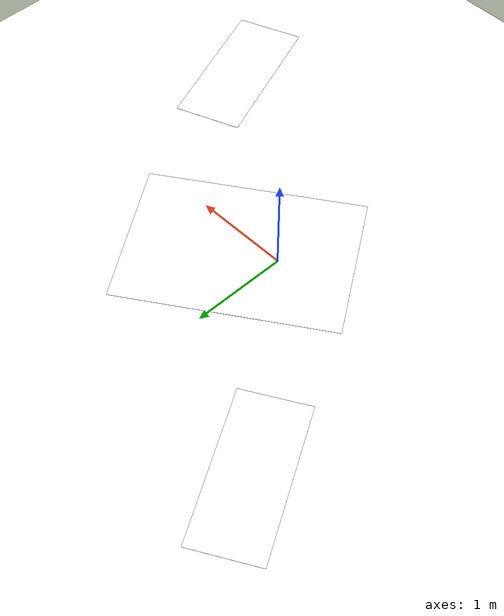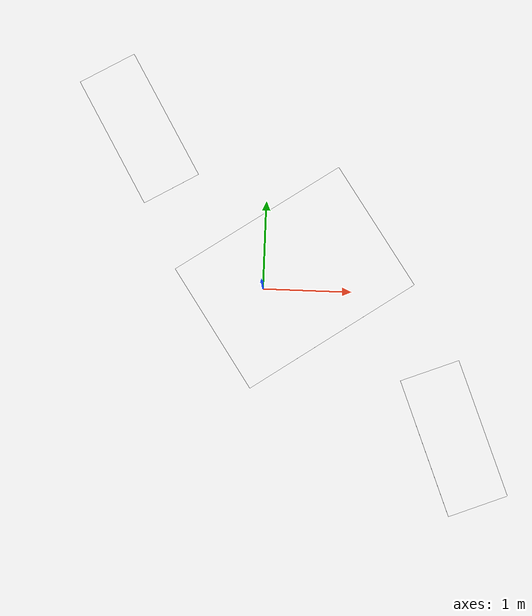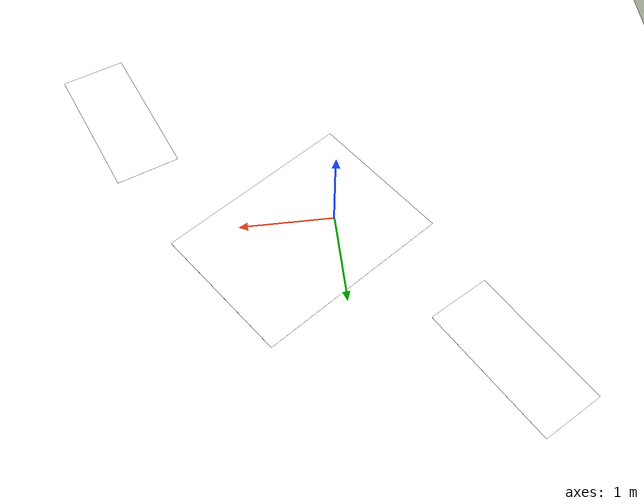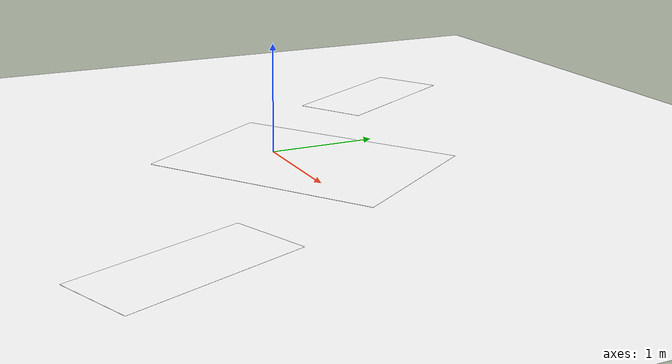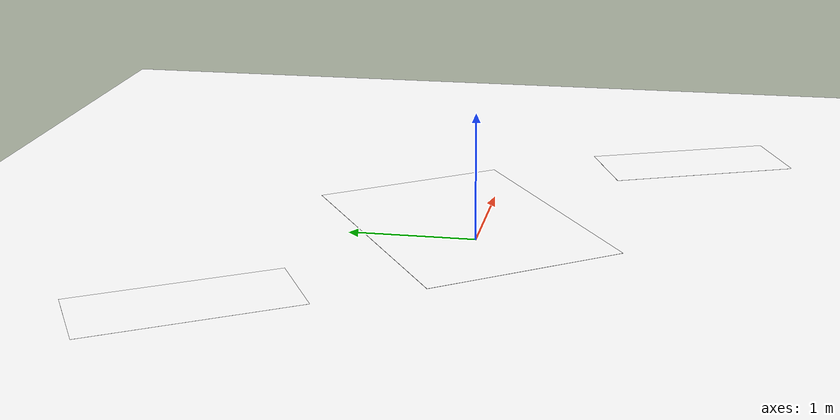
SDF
<?xml version="1.0" ?>
<sdf version="1.6">
  <world name="empty">

    <physics name="1ms" type="ignored">
      <max_step_size>0.001</max_step_size>
      <real_time_factor>1.0</real_time_factor>
    </physics>

    <plugin
      filename="gz-sim-physics-system"
      name="gz::sim::systems::Physics">
    </plugin>
    <plugin
      filename="gz-sim-user-commands-system"
      name="gz::sim::systems::UserCommands">
    </plugin>
    <plugin
      filename="gz-sim-scene-broadcaster-system"
      name="gz::sim::systems::SceneBroadcaster">
    </plugin>
    <plugin
      filename="gz-sim-contact-system"
      name="gz::sim::systems::Contact">
    </plugin>
    <plugin
      filename="gz-sim-imu-system"
      name="gz::sim::systems::Imu">
    </plugin>
    <plugin
      filename="gz-sim-sensors-system"
      name="gz::sim::systems::Sensors">
      <render_engine>ogre2</render_engine>
    </plugin>

    <light type="directional" name="sun">
      <cast_shadows>true</cast_shadows>
      <pose>0 0 10 0 0 0</pose>
      <diffuse>0.8 0.8 0.8 1</diffuse>
      <specular>0.2 0.2 0.2 1</specular>
      <attenuation>
        <range>1000</range>
        <constant>0.9</constant>
        <linear>0.01</linear>
        <quadratic>0.001</quadratic>
      </attenuation>
      <direction>-0.5 0.1 -0.9</direction>
    </light>

    <model name="ground_plane">
      <static>true</static>
      <link name="link">
        <collision name="collision">
          <geometry>
            <plane>
              <normal>0 0 1</normal>
              <size>100 100</size>
            </plane>
          </geometry>
        </collision>
        <visual name="visual">
          <geometry>
            <plane>
              <normal>0 0 1</normal>
              <size>100 100</size>
            </plane>
          </geometry>
          <material>
            <ambient>0.6 0.6 0.6 1</ambient>
            <diffuse>1.0 1.0 1.0 1</diffuse>
            <specular>0.1 0.1 0.1 1</specular>
            <pbr>
              <metal>
                <albedo_map>/workspace/src/drone_description/materials/ground_texture.png</albedo_map>
                <metalness>0.0</metalness>
                <roughness>0.9</roughness>
              </metal>
            </pbr>
          </material>
        </visual>
      </link>
    </model>

    <model name="victim_01">
      <static>true</static>
      <pose>0.35 0.15 0.002 0 0 0.6</pose>
      <link name="link">
        <visual name="visual">
          <geometry>
            <plane>
              <normal>0 0 1</normal>
              <size>2.2 1.6</size>
            </plane>
          </geometry>
          <material>
            <ambient>1 1 1 1</ambient>
            <diffuse>1 1 1 1</diffuse>
            <pbr>
              <metal>
                <albedo_map>/workspace/src/drone_description/materials/victim_01.png</albedo_map>
                <metalness>0.0</metalness>
                <roughness>0.9</roughness>
              </metal>
            </pbr>
          </material>
        </visual>
      </link>
    </model>

    <model name="victim_02">
      <static>true</static>
      <pose>-1.5 1.8 0.002 0 0 2.1</pose>
      <link name="link">
        <visual name="visual">
          <geometry>
            <plane>
              <normal>0 0 1</normal>
              <size>1.6 0.7</size>
            </plane>
          </geometry>
          <material>
            <ambient>1 1 1 1</ambient>
            <diffuse>1 1 1 1</diffuse>
            <pbr>
              <metal>
                <albedo_map>/workspace/src/drone_description/materials/victim_02.png</albedo_map>
                <metalness>0.0</metalness>
                <roughness>0.9</roughness>
              </metal>
            </pbr>
          </material>
        </visual>
      </link>
    </model>

    <model name="victim_03">
      <static>true</static>
      <pose>2.2 -1.6 0.002 0 0 -1.2</pose>
      <link name="link">
        <visual name="visual">
          <geometry>
            <plane>
              <normal>0 0 1</normal>
              <size>1.6 0.7</size>
            </plane>
          </geometry>
          <material>
            <ambient>1 1 1 1</ambient>
            <diffuse>1 1 1 1</diffuse>
            <pbr>
              <metal>
                <albedo_map>/workspace/src/drone_description/materials/victim_03.png</albedo_map>
                <metalness>0.0</metalness>
                <roughness>0.9</roughness>
              </metal>
            </pbr>
          </material>
        </visual>
      </link>
    </model>

    <model name="sensor_primer">
      <static>true</static>
      <pose>0 0 200 0 0 0</pose>
      <link name="primer_link">
        <inertial>
          <mass>0.1</mass>
          <inertia>
            <ixx>0.001</ixx>
            <ixy>0</ixy>
            <ixz>0</ixz>
            <iyy>0.001</iyy>
            <iyz>0</iyz>
            <izz>0.001</izz>
          </inertia>
        </inertial>
        <sensor name="primer_imu" type="imu">
          <always_on>1</always_on>
          <update_rate>10</update_rate>
          <topic>sensor_primer/imu</topic>
        </sensor>
      </link>
    </model>

  </world>
</sdf>
